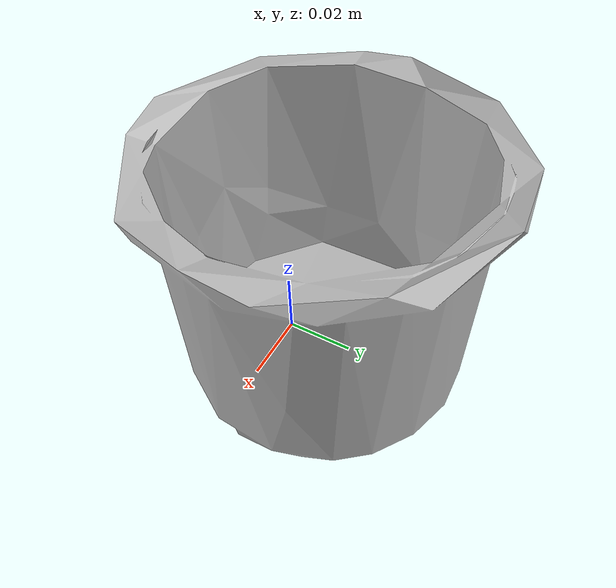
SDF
<?xml version='1.0'?>
<sdf version="1.4">
  <model name="065-h_cups">
    <static>false</static>
    <link name="link">
      <inertial>
        <pose>0.0033829282831513217 0.014210342518884325 0.039430088679413104 -2.9640401859251226 -0.08701039663797575 -2.5129766324726748</pose>
        <mass>0.041394901607064556</mass>
        <inertia>
          <ixx>3.7344017817250476e-05</ixx>
          <ixy>-1.830009699782982e-20</ixy>
          <ixz>1.866805027590558e-21</ixz>
          <iyy>3.7206156009897684e-05</iyy>
          <iyz>-1.726747093611519e-21</iyz>
          <izz>3.697648909706205e-05</izz>
        </inertia>
      </inertial>
      <collision name="collision">
        <geometry>
          <mesh>
            <!-- Use a downsampled mesh for collisions -->
            <uri>model:///065-h_cups/065-h_cups_250_collision.stl</uri>
	        </mesh>
        </geometry>
        <surface>
      </surface>
      </collision>
      <visual name="visual">
        <geometry>
          <mesh>
            <uri>model:///065-h_cups/textured.obj</uri>
	        </mesh>
        </geometry>
        <material>
          <script>
            <uri>model:///065-h_cups/065-h_cups.material</uri>
            <name>065-h_cups</name>
          </script>
        </material>
      </visual>
    </link>
  </model>
</sdf>
